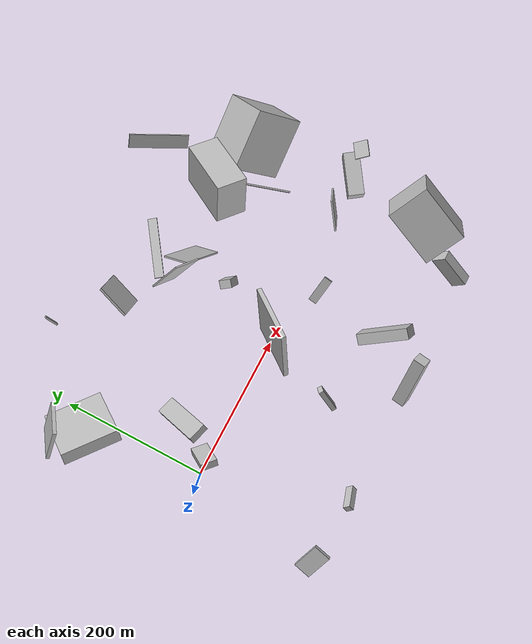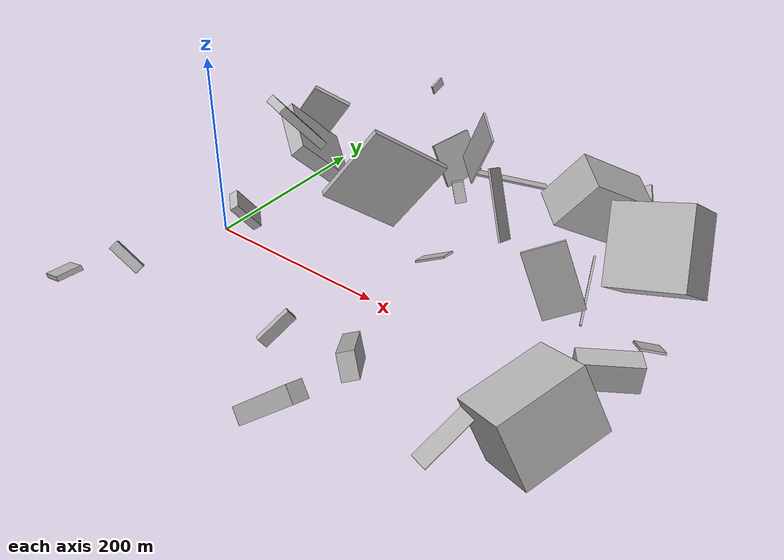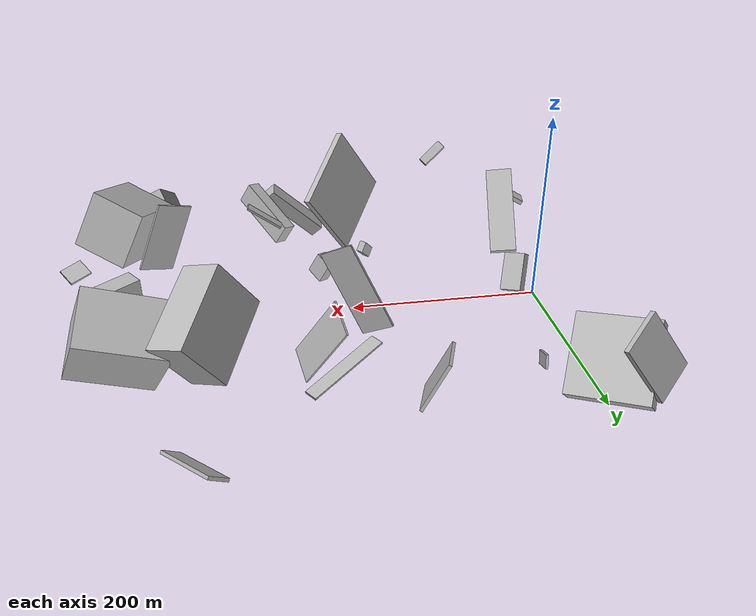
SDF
<sdf version="1.6">
 <world name="default">
  <scene>
   <sky><clouds><speed>12</speed></clouds></sky>
   <ambient>0.4 0.4 0.4 1</ambient>
   <background>0.7 0.7 0.7 1</background>
   <shadows>1</shadows>
  </scene>
  <gravity>0 0 -9.8066</gravity>
  <magnetic_field>6e-06 2.3e-05 -4.2e-05</magnetic_field>
  <physics default="0" name="default_physics" type="ode">
   <ode>
    <solver>
     <type>quick</type>
     <iters>10</iters>
     <sor>1.0</sor>
     <use_dynamic_moi_rescaling>0</use_dynamic_moi_rescaling>
    </solver>
    <constraints>
     <cfm>0</cfm>
     <erp>0.2</erp>
     <contact_max_correcting_vel>100</contact_max_correcting_vel>
     <contact_surface_layer>0.001</contact_surface_layer>
    </constraints>
   </ode>
   <max_step_size>0.004</max_step_size>
   <real_time_factor>1</real_time_factor>
   <real_time_update_rate>250</real_time_update_rate>
  </physics>
  <light name="sun" type="directional">
   <pose>0 0 10 0 0 0</pose>
   <diffuse>0.8 0.8 0.8 1</diffuse>
   <specular>0.2 0.2 0.2 1</specular>
   <attenuation>
    <range>1000</range>
    <constant>0.9</constant>
    <linear>0.01</linear>
    <quadratic>0.001</quadratic>
   </attenuation>
   <direction>-0.5 0.1 -0.9</direction>
  </light>
  <model name="building_1">
   <static>0</static>
   <pose>231.40970819924237 32.68780693555489 116.48605371975165 0.9560289713467517 0.16591413808155792 -0.7463592399468649</pose>
   <link name="link">
    <gravity>0</gravity>
    <pose>0 0 40.0 0 0 0</pose>
    <collision name="collision"><geometry><box><size>6 80 80</size></box></geometry></collision>
    <visual name="visual">
     <cast_shadows>0</cast_shadows>
     <geometry><box><size>6 80 80</size></box></geometry>
     <material>
      <script>
       <uri>model://HANNAS_wall/materials/scripts</uri>
       <uri>model://HANNAS_wall/materials/textures</uri>
       <name>vrc/HANNAS_wall</name>
      </script>
     </material>
    </visual>
   </link>
  </model>
  <model name="building_2">
   <static>0</static>
   <pose>203.6578757087698 158.56931462729565 75.6886866771875 -0.05062073159993054 0.5122794256415214 -0.6603581527152907</pose>
   <link name="link">
    <gravity>0</gravity>
    <pose>0 0 40.0 0 0 0</pose>
    <collision name="collision"><geometry><box><size>33 2 80</size></box></geometry></collision>
    <visual name="visual">
     <cast_shadows>0</cast_shadows>
     <geometry><box><size>33 2 80</size></box></geometry>
     <material>
      <script>
       <uri>model://HANNAS_wall/materials/scripts</uri>
       <uri>model://HANNAS_wall/materials/textures</uri>
       <name>vrc/HANNAS_wall</name>
      </script>
     </material>
    </visual>
   </link>
  </model>
  <model name="building_3">
   <static>0</static>
   <pose>76.06077646012523 49.440852712437206 127.27321545164749 1.3913465952889776 0.685598013938985 -1.9728135256358448</pose>
   <link name="link">
    <gravity>0</gravity>
    <pose>0 0 12.0 0 0 0</pose>
    <collision name="collision"><geometry><box><size>9 80 24</size></box></geometry></collision>
    <visual name="visual">
     <cast_shadows>0</cast_shadows>
     <geometry><box><size>9 80 24</size></box></geometry>
     <material>
      <script>
       <uri>model://HANNAS_wall/materials/scripts</uri>
       <uri>model://HANNAS_wall/materials/textures</uri>
       <name>vrc/HANNAS_wall</name>
      </script>
     </material>
    </visual>
   </link>
  </model>
  <model name="building_4">
   <static>0</static>
   <pose>287.8218582754723 -22.446447337889808 103.67745431615322 0.5875663657026547 -0.006515386512882939 -1.7032318767574957</pose>
   <link name="link">
    <gravity>0</gravity>
    <pose>0 0 1.0 0 0 0</pose>
    <collision name="collision"><geometry><box><size>11 39 2</size></box></geometry></collision>
    <visual name="visual">
     <cast_shadows>0</cast_shadows>
     <geometry><box><size>11 39 2</size></box></geometry>
     <material>
      <script>
       <uri>model://HANNAS_wall/materials/scripts</uri>
       <uri>model://HANNAS_wall/materials/textures</uri>
       <name>vrc/HANNAS_wall</name>
      </script>
     </material>
    </visual>
   </link>
  </model>
  <model name="building_5">
   <static>0</static>
   <pose>448.2470097405481 -63.77916604840211 80.76343988686162 -1.8577306098756938 0.3637574940998729 2.6718766839361225</pose>
   <link name="link">
    <gravity>0</gravity>
    <pose>0 0 40.0 0 0 0</pose>
    <collision name="collision"><geometry><box><size>58 61 80</size></box></geometry></collision>
    <visual name="visual">
     <cast_shadows>0</cast_shadows>
     <geometry><box><size>58 61 80</size></box></geometry>
     <material>
      <script>
       <uri>model://HANNAS_wall/materials/scripts</uri>
       <uri>model://HANNAS_wall/materials/textures</uri>
       <name>vrc/HANNAS_wall</name>
      </script>
     </material>
    </visual>
   </link>
  </model>
  <model name="building_6">
   <static>0</static>
   <pose>425.7357715651674 165.01056079546677 62.70182053837114 0.9295900786894324 -0.3112726157166981 0.05781737669732433</pose>
   <link name="link">
    <gravity>0</gravity>
    <pose>0 0 26.5 0 0 0</pose>
    <collision name="collision"><geometry><box><size>79 80 53</size></box></geometry></collision>
    <visual name="visual">
     <cast_shadows>0</cast_shadows>
     <geometry><box><size>79 80 53</size></box></geometry>
     <material>
      <script>
       <uri>model://HANNAS_wall/materials/scripts</uri>
       <uri>model://HANNAS_wall/materials/textures</uri>
       <name>vrc/HANNAS_wall</name>
      </script>
     </material>
    </visual>
   </link>
  </model>
  <model name="building_7">
   <static>0</static>
   <pose>389.6114008257842 -152.38401027798727 59.1663684875734 0.5806173736838522 0.45263561126414353 -0.03221385402875088</pose>
   <link name="link">
    <gravity>0</gravity>
    <pose>0 0 10.5 0 0 0</pose>
    <collision name="collision"><geometry><box><size>14 50 21</size></box></geometry></collision>
    <visual name="visual">
     <cast_shadows>0</cast_shadows>
     <geometry><box><size>14 50 21</size></box></geometry>
     <material>
      <script>
       <uri>model://HANNAS_wall/materials/scripts</uri>
       <uri>model://HANNAS_wall/materials/textures</uri>
       <name>vrc/HANNAS_wall</name>
      </script>
     </material>
    </visual>
   </link>
  </model>
  <model name="building_8">
   <static>0</static>
   <pose>-29.80266922409814 141.70664342925903 53.22223353929516 2.8946102664782942 0.743869220041295 -2.4151015398858036</pose>
   <link name="link">
    <gravity>0</gravity>
    <pose>0 0 40.0 0 0 0</pose>
    <collision name="collision"><geometry><box><size>19 80 80</size></box></geometry></collision>
    <visual name="visual">
     <cast_shadows>0</cast_shadows>
     <geometry><box><size>19 80 80</size></box></geometry>
     <material>
      <script>
       <uri>model://HANNAS_wall/materials/scripts</uri>
       <uri>model://HANNAS_wall/materials/textures</uri>
       <name>vrc/HANNAS_wall</name>
      </script>
     </material>
    </visual>
   </link>
  </model>
  <model name="building_9">
   <static>0</static>
   <pose>72.76690566967795 -182.58776215067724 95.92441900894106 -0.7952153968665834 0.6802639128052976 0.2491129966941057</pose>
   <link name="link">
    <gravity>0</gravity>
    <pose>0 0 4.5 0 0 0</pose>
    <collision name="collision"><geometry><box><size>31 10 9</size></box></geometry></collision>
    <visual name="visual">
     <cast_shadows>0</cast_shadows>
     <geometry><box><size>31 10 9</size></box></geometry>
     <material>
      <script>
       <uri>model://HANNAS_wall/materials/scripts</uri>
       <uri>model://HANNAS_wall/materials/textures</uri>
       <name>vrc/HANNAS_wall</name>
      </script>
     </material>
    </visual>
   </link>
  </model>
  <model name="building_10">
   <static>0</static>
   <pose>472.43734631439906 15.570609553544847 77.48736414596873 -2.9415499562874814 0.38640460025022205 2.251430972858427</pose>
   <link name="link">
    <gravity>0</gravity>
    <pose>0 0 1.0 0 0 0</pose>
    <collision name="collision"><geometry><box><size>19 22 2</size></box></geometry></collision>
    <visual name="visual">
     <cast_shadows>0</cast_shadows>
     <geometry><box><size>19 22 2</size></box></geometry>
     <material>
      <script>
       <uri>model://HANNAS_wall/materials/scripts</uri>
       <uri>model://HANNAS_wall/materials/textures</uri>
       <name>vrc/HANNAS_wall</name>
      </script>
     </material>
    </visual>
   </link>
  </model>
  <model name="building_11">
   <static>0</static>
   <pose>364.179719559911 254.85932730946885 33.23608481253944 -2.755127870819266 -0.5233540947955723 0.33673842066503457</pose>
   <link name="link">
    <gravity>0</gravity>
    <pose>0 0 1.5 0 0 0</pose>
    <collision name="collision"><geometry><box><size>18 80 3</size></box></geometry></collision>
    <visual name="visual">
     <cast_shadows>0</cast_shadows>
     <geometry><box><size>18 80 3</size></box></geometry>
     <material>
      <script>
       <uri>model://HANNAS_wall/materials/scripts</uri>
       <uri>model://HANNAS_wall/materials/textures</uri>
       <name>vrc/HANNAS_wall</name>
      </script>
     </material>
    </visual>
   </link>
  </model>
  <model name="building_12">
   <static>0</static>
   <pose>450.3426325076283 0.056065865992319885 40.858905314649675 1.5941298932374042 -0.03996334720739574 -2.5280043426214793</pose>
   <link name="link">
    <gravity>0</gravity>
    <pose>0 0 10.5 0 0 0</pose>
    <collision name="collision"><geometry><box><size>56 28 21</size></box></geometry></collision>
    <visual name="visual">
     <cast_shadows>0</cast_shadows>
     <geometry><box><size>56 28 21</size></box></geometry>
     <material>
      <script>
       <uri>model://HANNAS_wall/materials/scripts</uri>
       <uri>model://HANNAS_wall/materials/textures</uri>
       <name>vrc/HANNAS_wall</name>
      </script>
     </material>
    </visual>
   </link>
  </model>
  <model name="building_13">
   <static>0</static>
   <pose>153.67279383818115 182.07859617825414 50.11085779200835 1.214055341161936 -1.0983063700225861 3.121681881910765</pose>
   <link name="link">
    <gravity>0</gravity>
    <pose>0 0 23.0 0 0 0</pose>
    <collision name="collision"><geometry><box><size>49 3 46</size></box></geometry></collision>
    <visual name="visual">
     <cast_shadows>0</cast_shadows>
     <geometry><box><size>49 3 46</size></box></geometry>
     <material>
      <script>
       <uri>model://HANNAS_wall/materials/scripts</uri>
       <uri>model://HANNAS_wall/materials/textures</uri>
       <name>vrc/HANNAS_wall</name>
      </script>
     </material>
    </visual>
   </link>
  </model>
  <model name="building_14">
   <static>0</static>
   <pose>335.13080901086465 170.78016591492502 101.81710623141669 2.1191211631725206 -0.9340072687530915 0.4216857725575395</pose>
   <link name="link">
    <gravity>0</gravity>
    <pose>0 0 20.0 0 0 0</pose>
    <collision name="collision"><geometry><box><size>59 80 40</size></box></geometry></collision>
    <visual name="visual">
     <cast_shadows>0</cast_shadows>
     <geometry><box><size>59 80 40</size></box></geometry>
     <material>
      <script>
       <uri>model://HANNAS_wall/materials/scripts</uri>
       <uri>model://HANNAS_wall/materials/textures</uri>
       <name>vrc/HANNAS_wall</name>
      </script>
     </material>
    </visual>
   </link>
  </model>
  <model name="building_15">
   <static>0</static>
   <pose>93.32725404567975 257.8846056224256 101.1920579445426 1.5349324969796148 -0.3633452836910985 1.4823291884723582</pose>
   <link name="link">
    <gravity>0</gravity>
    <pose>0 0 1.0 0 0 0</pose>
    <collision name="collision"><geometry><box><size>17 11 2</size></box></geometry></collision>
    <visual name="visual">
     <cast_shadows>0</cast_shadows>
     <geometry><box><size>17 11 2</size></box></geometry>
     <material>
      <script>
       <uri>model://HANNAS_wall/materials/scripts</uri>
       <uri>model://HANNAS_wall/materials/textures</uri>
       <name>vrc/HANNAS_wall</name>
      </script>
     </material>
    </visual>
   </link>
  </model>
  <model name="building_16">
   <static>0</static>
   <pose>-37.79905739353727 202.1092896166821 48.4486894205256 2.1104364239271836 -0.9546844665505116 0.011774911237578367</pose>
   <link name="link">
    <gravity>0</gravity>
    <pose>0 0 2.5 0 0 0</pose>
    <collision name="collision"><geometry><box><size>73 46 5</size></box></geometry></collision>
    <visual name="visual">
     <cast_shadows>0</cast_shadows>
     <geometry><box><size>73 46 5</size></box></geometry>
     <material>
      <script>
       <uri>model://HANNAS_wall/materials/scripts</uri>
       <uri>model://HANNAS_wall/materials/textures</uri>
       <name>vrc/HANNAS_wall</name>
      </script>
     </material>
    </visual>
   </link>
  </model>
  <model name="building_17">
   <static>0</static>
   <pose>-29.859400238770363 -195.15850188559733 37.15400182509566 -1.4810523040491794 -0.4630064815743685 -0.2789696182714269</pose>
   <link name="link">
    <gravity>0</gravity>
    <pose>0 0 12.5 0 0 0</pose>
    <collision name="collision"><geometry><box><size>42 5 25</size></box></geometry></collision>
    <visual name="visual">
     <cast_shadows>0</cast_shadows>
     <geometry><box><size>42 5 25</size></box></geometry>
     <material>
      <script>
       <uri>model://HANNAS_wall/materials/scripts</uri>
       <uri>model://HANNAS_wall/materials/textures</uri>
       <name>vrc/HANNAS_wall</name>
      </script>
     </material>
    </visual>
   </link>
  </model>
  <model name="building_18">
   <static>0</static>
   <pose>251.20442326145093 144.8713565169899 58.24264014925754 0.9012904610959496 -0.9925650748562045 2.5104301129540274</pose>
   <link name="link">
    <gravity>0</gravity>
    <pose>0 0 1.0 0 0 0</pose>
    <collision name="collision"><geometry><box><size>75 35 2</size></box></geometry></collision>
    <visual name="visual">
     <cast_shadows>0</cast_shadows>
     <geometry><box><size>75 35 2</size></box></geometry>
     <material>
      <script>
       <uri>model://HANNAS_wall/materials/scripts</uri>
       <uri>model://HANNAS_wall/materials/textures</uri>
       <name>vrc/HANNAS_wall</name>
      </script>
     </material>
    </visual>
   </link>
  </model>
  <model name="building_19">
   <static>0</static>
   <pose>284.8456723138657 -120.03305983692087 61.44799493918193 1.791631734577276 -0.49363066512414355 -0.958069368837404</pose>
   <link name="link">
    <gravity>0</gravity>
    <pose>0 0 7.5 0 0 0</pose>
    <collision name="collision"><geometry><box><size>70 24 15</size></box></geometry></collision>
    <visual name="visual">
     <cast_shadows>0</cast_shadows>
     <geometry><box><size>70 24 15</size></box></geometry>
     <material>
      <script>
       <uri>model://HANNAS_wall/materials/scripts</uri>
       <uri>model://HANNAS_wall/materials/textures</uri>
       <name>vrc/HANNAS_wall</name>
      </script>
     </material>
    </visual>
   </link>
  </model>
  <model name="building_20">
   <static>0</static>
   <pose>18.01729466674001 14.02587790955421 34.83216983939858 -1.9749455821888076 -0.9431094573139958 -1.9928415439449134</pose>
   <link name="link">
    <gravity>0</gravity>
    <pose>0 0 11.5 0 0 0</pose>
    <collision name="collision"><geometry><box><size>40 10 23</size></box></geometry></collision>
    <visual name="visual">
     <cast_shadows>0</cast_shadows>
     <geometry><box><size>40 10 23</size></box></geometry>
     <material>
      <script>
       <uri>model://HANNAS_wall/materials/scripts</uri>
       <uri>model://HANNAS_wall/materials/textures</uri>
       <name>vrc/HANNAS_wall</name>
      </script>
     </material>
    </visual>
   </link>
  </model>
  <model name="building_21">
   <static>0</static>
   <pose>370.6429168179284 -0.2035985567393208 98.27301814745675 0.3693041836344292 -1.1926489558331226 -2.8903061015446623</pose>
   <link name="link">
    <gravity>0</gravity>
    <pose>0 0 19.0 0 0 0</pose>
    <collision name="collision"><geometry><box><size>68 2 38</size></box></geometry></collision>
    <visual name="visual">
     <cast_shadows>0</cast_shadows>
     <geometry><box><size>68 2 38</size></box></geometry>
     <material>
      <script>
       <uri>model://HANNAS_wall/materials/scripts</uri>
       <uri>model://HANNAS_wall/materials/textures</uri>
       <name>vrc/HANNAS_wall</name>
      </script>
     </material>
    </visual>
   </link>
  </model>
  <model name="building_22">
   <static>0</static>
   <pose>237.78058015550906 -183.6316206686562 38.40318407991946 2.3556230696239338 0.25682382763542383 1.442072592424064</pose>
   <link name="link">
    <gravity>0</gravity>
    <pose>0 0 8.5 0 0 0</pose>
    <collision name="collision"><geometry><box><size>17 80 17</size></box></geometry></collision>
    <visual name="visual">
     <cast_shadows>0</cast_shadows>
     <geometry><box><size>17 80 17</size></box></geometry>
     <material>
      <script>
       <uri>model://HANNAS_wall/materials/scripts</uri>
       <uri>model://HANNAS_wall/materials/textures</uri>
       <name>vrc/HANNAS_wall</name>
      </script>
     </material>
    </visual>
   </link>
  </model>
  <model name="building_23">
   <static>0</static>
   <pose>237.88107340461778 189.48746783764938 62.797801331060704 -2.923705208501021 0.10566553305095062 2.222276455597867</pose>
   <link name="link">
    <gravity>0</gravity>
    <pose>0 0 1.0 0 0 0</pose>
    <collision name="collision"><geometry><box><size>12 80 2</size></box></geometry></collision>
    <visual name="visual">
     <cast_shadows>0</cast_shadows>
     <geometry><box><size>12 80 2</size></box></geometry>
     <material>
      <script>
       <uri>model://HANNAS_wall/materials/scripts</uri>
       <uri>model://HANNAS_wall/materials/textures</uri>
       <name>vrc/HANNAS_wall</name>
      </script>
     </material>
    </visual>
   </link>
  </model>
  <model name="building_24">
   <static>0</static>
   <pose>172.8324044400804 -102.66896050681964 17.193435716762664 1.8666596857888886 -0.917238101964994 -2.3611788196314896</pose>
   <link name="link">
    <gravity>0</gravity>
    <pose>0 0 3.5 0 0 0</pose>
    <collision name="collision"><geometry><box><size>12 38 7</size></box></geometry></collision>
    <visual name="visual">
     <cast_shadows>0</cast_shadows>
     <geometry><box><size>12 38 7</size></box></geometry>
     <material>
      <script>
       <uri>model://HANNAS_wall/materials/scripts</uri>
       <uri>model://HANNAS_wall/materials/textures</uri>
       <name>vrc/HANNAS_wall</name>
      </script>
     </material>
    </visual>
   </link>
  </model>
  <model name="building_25">
   <static>0</static>
   <pose>245.85751029737574 81.67657836336109 91.38336093198086 -0.45801745561508 -0.19239181550076914 0.7005164426761471</pose>
   <link name="link">
    <gravity>0</gravity>
    <pose>0 0 10.0 0 0 0</pose>
    <collision name="collision"><geometry><box><size>11 16 20</size></box></geometry></collision>
    <visual name="visual">
     <cast_shadows>0</cast_shadows>
     <geometry><box><size>11 16 20</size></box></geometry>
     <material>
      <script>
       <uri>model://HANNAS_wall/materials/scripts</uri>
       <uri>model://HANNAS_wall/materials/textures</uri>
       <name>vrc/HANNAS_wall</name>
      </script>
     </material>
    </visual>
   </link>
  </model>
  <model name="building_26">
   <static>0</static>
   <pose>376.4389059797889 107.86326481893292 31.108406814921626 1.3642029509574256 0.3313045281337024 -1.2190384311928821</pose>
   <link name="link">
    <gravity>0</gravity>
    <pose>0 0 1.0 0 0 0</pose>
    <collision name="collision"><geometry><box><size>80 2 2</size></box></geometry></collision>
    <visual name="visual">
     <cast_shadows>0</cast_shadows>
     <geometry><box><size>80 2 2</size></box></geometry>
     <material>
      <script>
       <uri>model://HANNAS_wall/materials/scripts</uri>
       <uri>model://HANNAS_wall/materials/textures</uri>
       <name>vrc/HANNAS_wall</name>
      </script>
     </material>
    </visual>
   </link>
  </model>
 </world>
</sdf>
